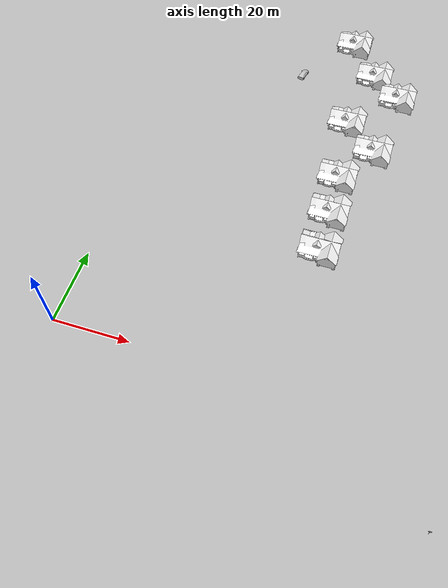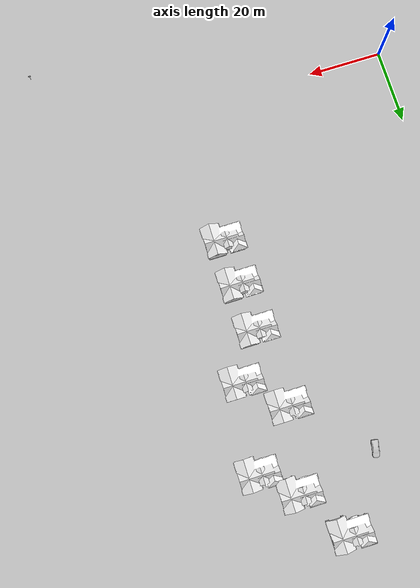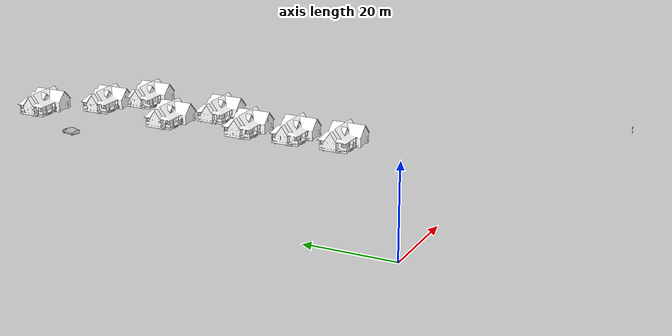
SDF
<sdf version="1.6">
 <world name="default">
  <model name="Speed limit">
   <static>1</static>
   <link name="link">
    <collision name="collision">
     <geometry>
      <mesh><scale>10 10 10</scale><uri>model://speed_limit_sign/meshes/speed_limit_sign.dae</uri></mesh>
     </geometry>
    </collision>
    <visual name="visual">
     <geometry>
      <mesh><scale>10 10 10</scale><uri>model://speed_limit_sign/meshes/speed_limit_sign.dae</uri></mesh>
     </geometry>
    </visual>
   </link>
   <pose>93.9624 -21.3385 0 0 -0 0</pose>
  </model>
  <model name="prius">
   <link name="base_link">
    <inertial>
     <mass>1</mass>
     <inertia><ixx>0.001</ixx><ixy>0</ixy><ixz>0</ixz><iyy>0.001</iyy><iyz>0</iyz><izz>0.001</izz></inertia>
    </inertial>
   </link>
   <link name="chassis">
    <pose>1.45 0 0 0 -0 1.57</pose>
    <inertial>
     <pose>0 -0.003338 0.483111 0 -0 1.5708</pose>
     <mass>1363</mass>
     <inertia>
      <ixx>2589.1</ixx>
      <ixy>3.6612e-05</ixy>
      <ixz>-0.688154</ixz>
      <iyy>609.246</iyy>
      <iyz>2.52773e-06</iyz>
      <izz>2699.92</izz>
     </inertia>
    </inertial>
    <collision name="chassis_collision">
     <pose>0 0.05 0.625 0 -0 0</pose>
     <geometry><box><size>1.7526 2.1 0.95</size></box></geometry>
    </collision>
    <collision name="chassis_fixed_joint_lump__front_bumper_collision_1">
     <pose>0 -2 0.458488 0 -0 0</pose>
     <geometry><box><size>1.33728 0.48 0.566691</size></box></geometry>
    </collision>
    <collision name="chassis_fixed_joint_lump__hood_collision_2">
     <pose>0 -1.90084 0.676305 0.341247 -0 0</pose>
     <geometry><box><size>1.59797 0.493107 0.265468</size></box></geometry>
    </collision>
    <collision name="chassis_fixed_joint_lump__windshield_collision_3">
     <pose>0 -0.875105 1.03227 0.335476 -0 0</pose>
     <geometry><box><size>1.16838 1.65425 0.272347</size></box></geometry>
    </collision>
    <collision name="chassis_fixed_joint_lump__top_front_collision_4">
     <pose>0 0.161236 1.38604 0.13503 -0 0</pose>
     <geometry><box><size>1.27915 0.625988 0.171868</size></box></geometry>
    </collision>
    <collision name="chassis_fixed_joint_lump__top_rear_collision_5">
     <pose>0 0.817696 1.36007 -0.068997 0 0</pose>
     <geometry><box><size>1.28513 0.771189 0.226557</size></box></geometry>
    </collision>
    <collision name="chassis_fixed_joint_lump__rear_window_collision_6">
     <pose>0 1.64053 1.17513 -0.262017 0 0</pose>
     <geometry><box><size>1.26785 1.11634 0.244286</size></box></geometry>
    </collision>
    <collision name="chassis_fixed_joint_lump__trunk_collision_7">
     <pose>0 1.63706 0.88818 0 -0 0</pose>
     <geometry><box><size>1.78806 1.13899 0.482746</size></box></geometry>
    </collision>
    <collision name="chassis_fixed_joint_lump__back_bumper_collision_8">
     <pose>0 2.05445 0.57787 0 -0 0</pose>
     <geometry><box><size>1.78165 0.512093 0.581427</size></box></geometry>
    </collision>
    <visual name="chassis_visual">
     <geometry>
      <mesh>
       <scale>0.01 0.01 0.01</scale>
       <uri>/home/whiteherv/catkin_ws/src/car_demo/prius_description/meshes/hybrid_body.obj</uri>
      </mesh>
     </geometry>
    </visual>
    <sensor name="back_camera_sensor" type="camera">
     <update_rate>30</update_rate>
     <camera name="back_camera">
      <horizontal_fov>1.39626</horizontal_fov>
      <image><width>800</width><height>800</height><format>R8G8B8</format></image>
      <clip><near>0.02</near><far>300</far></clip>
      <noise><type>gaussian</type><mean>0</mean><stddev>0.007</stddev></noise>
     </camera>
     <plugin name="back_camera_controller" filename="libgazebo_ros_camera.so">
      <alwaysOn>false</alwaysOn>
      <updateRate>0.0</updateRate>
      <cameraName>/prius/back_camera</cameraName>
      <imageTopicName>image_raw</imageTopicName>
      <cameraInfoTopicName>/prius/back_camera_info</cameraInfoTopicName>
      <frameName>camera_link</frameName>
      <hackBaseline>0.07</hackBaseline>
      <distortionK1>0.0</distortionK1>
      <distortionK2>0.0</distortionK2>
      <distortionK3>0.0</distortionK3>
      <distortionT1>0.0</distortionT1>
      <distortionT2>0.0</distortionT2>
      <robotNamespace>/</robotNamespace>
     </plugin>
     <pose>0 1.45 1.4 0 0.05 1.5707</pose>
    </sensor>
    <sensor name="front_camera_sensor" type="camera">
     <update_rate>30</update_rate>
     <camera name="front_camera">
      <horizontal_fov>1.39626</horizontal_fov>
      <image><width>800</width><height>800</height><format>R8G8B8</format></image>
      <clip><near>0.02</near><far>300</far></clip>
      <noise><type>gaussian</type><mean>0</mean><stddev>0.007</stddev></noise>
     </camera>
     <plugin name="front_camera_controller" filename="libgazebo_ros_camera.so">
      <alwaysOn>false</alwaysOn>
      <updateRate>0.0</updateRate>
      <cameraName>/prius/front_camera</cameraName>
      <imageTopicName>image_raw</imageTopicName>
      <cameraInfoTopicName>/prius/front_camera_info</cameraInfoTopicName>
      <frameName>camera_link</frameName>
      <hackBaseline>0.07</hackBaseline>
      <distortionK1>0.0</distortionK1>
      <distortionK2>0.0</distortionK2>
      <distortionK3>0.0</distortionK3>
      <distortionT1>0.0</distortionT1>
      <distortionT2>0.0</distortionT2>
      <robotNamespace>/</robotNamespace>
     </plugin>
     <pose>0 -0.4 1.4 0 0.05 -1.5707</pose>
    </sensor>
    <sensor name="left_camera_sensor" type="camera">
     <update_rate>30</update_rate>
     <camera name="left_camera">
      <horizontal_fov>1.39626</horizontal_fov>
      <image><width>800</width><height>800</height><format>R8G8B8</format></image>
      <clip><near>0.02</near><far>300</far></clip>
      <noise><type>gaussian</type><mean>0</mean><stddev>0.007</stddev></noise>
     </camera>
     <plugin name="left_camera_controller" filename="libgazebo_ros_camera.so">
      <alwaysOn>false</alwaysOn>
      <updateRate>0.0</updateRate>
      <cameraName>/prius/left_camera</cameraName>
      <imageTopicName>image_raw</imageTopicName>
      <cameraInfoTopicName>/prius/left_camera_info</cameraInfoTopicName>
      <frameName>camera_link</frameName>
      <hackBaseline>0.07</hackBaseline>
      <distortionK1>0.0</distortionK1>
      <distortionK2>0.0</distortionK2>
      <distortionK3>0.0</distortionK3>
      <distortionT1>0.0</distortionT1>
      <distortionT2>0.0</distortionT2>
      <robotNamespace>/</robotNamespace>
     </plugin>
     <pose>1 -0.7 1 0 0.05 1</pose>
    </sensor>
    <sensor name="right_camera_sensor" type="camera">
     <update_rate>30</update_rate>
     <camera name="right_camera">
      <horizontal_fov>1.39626</horizontal_fov>
      <image><width>800</width><height>800</height><format>R8G8B8</format></image>
      <clip><near>0.02</near><far>300</far></clip>
      <noise><type>gaussian</type><mean>0</mean><stddev>0.007</stddev></noise>
     </camera>
     <plugin name="right_camera_controller" filename="libgazebo_ros_camera.so">
      <alwaysOn>false</alwaysOn>
      <updateRate>0.0</updateRate>
      <cameraName>/prius/right_camera</cameraName>
      <imageTopicName>image_raw</imageTopicName>
      <cameraInfoTopicName>/prius/right_camera_info</cameraInfoTopicName>
      <frameName>camera_link</frameName>
      <hackBaseline>0.07</hackBaseline>
      <distortionK1>0.0</distortionK1>
      <distortionK2>0.0</distortionK2>
      <distortionK3>0.0</distortionK3>
      <distortionT1>0.0</distortionT1>
      <distortionT2>0.0</distortionT2>
      <robotNamespace>/</robotNamespace>
     </plugin>
     <pose>-1 -0.7 1 0 0.05 2.1416</pose>
    </sensor>
    <sensor name="center_velodyne" type="gpu_ray">
     <visualize>0</visualize>
     <update_rate>25</update_rate>
     <ray>
      <scan>
       <horizontal>
        <samples>1875</samples>
        <resolution>1</resolution>
        <min_angle>-3.14159</min_angle>
        <max_angle>3.14159</max_angle>
       </horizontal>
       <vertical>
        <samples>16</samples>
        <resolution>1</resolution>
        <min_angle>-0.261799</min_angle>
        <max_angle>0.261799</max_angle>
       </vertical>
      </scan>
      <range><min>0.3</min><max>131</max><resolution>0.001</resolution></range>
      <noise><type>gaussian</type><mean>0</mean><stddev>0</stddev></noise>
     </ray>
     <plugin name="gazebo_ros_laser_controller" filename="libgazebo_ros_velodyne_gpu_laser.so">
      <topicName>/points_raw</topicName>
      <frameName>/velodyne_center_link</frameName>
      <min_range>0.9</min_range>
      <max_range>130.0</max_range>
      <gaussianNoise>0.008</gaussianNoise>
      <robotNamespace>/</robotNamespace>
     </plugin>
     <pose>0 0.4 1.8 0 0 -1.5707</pose>
    </sensor>
    <sensor name="front_left_velodyne" type="gpu_ray">
     <visualize>0</visualize>
     <update_rate>25</update_rate>
     <ray>
      <scan>
       <horizontal>
        <samples>1875</samples>
        <resolution>1</resolution>
        <min_angle>-3.14159</min_angle>
        <max_angle>3.14159</max_angle>
       </horizontal>
       <vertical>
        <samples>16</samples>
        <resolution>1</resolution>
        <min_angle>-0.261799</min_angle>
        <max_angle>0.261799</max_angle>
       </vertical>
      </scan>
      <range><min>0.3</min><max>131</max><resolution>0.001</resolution></range>
      <noise><type>gaussian</type><mean>0</mean><stddev>0</stddev></noise>
     </ray>
     <plugin name="gazebo_ros_laser_controller" filename="libgazebo_ros_velodyne_gpu_laser.so">
      <topicName>/points_raw2</topicName>
      <frameName>/velodyne_front_left_link</frameName>
      <min_range>0.9</min_range>
      <max_range>130.0</max_range>
      <gaussianNoise>0.008</gaussianNoise>
      <robotNamespace>/</robotNamespace>
     </plugin>
     <pose>1 -2.3 0.5 0 0.05 0</pose>
    </sensor>
    <sensor name="front_right_velodyne" type="gpu_ray">
     <visualize>0</visualize>
     <update_rate>25</update_rate>
     <ray>
      <scan>
       <horizontal>
        <samples>1875</samples>
        <resolution>1</resolution>
        <min_angle>-3.14159</min_angle>
        <max_angle>3.14159</max_angle>
       </horizontal>
       <vertical>
        <samples>16</samples>
        <resolution>1</resolution>
        <min_angle>-0.261799</min_angle>
        <max_angle>0.261799</max_angle>
       </vertical>
      </scan>
      <range><min>0.3</min><max>131</max><resolution>0.001</resolution></range>
      <noise><type>gaussian</type><mean>0</mean><stddev>0</stddev></noise>
     </ray>
     <plugin name="gazebo_ros_laser_controller" filename="libgazebo_ros_velodyne_gpu_laser.so">
      <topicName>/points_raw3</topicName>
      <frameName>/velodyne_front_right_link</frameName>
      <min_range>0.9</min_range>
      <max_range>130.0</max_range>
      <gaussianNoise>0.008</gaussianNoise>
      <robotNamespace>/</robotNamespace>
     </plugin>
     <pose>-1 -2.3 0.5 -0 0.05 3.14</pose>
    </sensor>
   </link>
   <joint name="base_link_connection" type="revolute">
    <child>chassis</child>
    <parent>base_link</parent>
    <axis>
     <limit><lower>0</lower><upper>0</upper></limit>
     <dynamics>
      <damping>0</damping>
      <friction>0</friction>
      <spring_reference>0</spring_reference>
      <spring_stiffness>0</spring_stiffness>
     </dynamics>
     <use_parent_model_frame>1</use_parent_model_frame>
     <xyz>0 0 1</xyz>
    </axis>
    <physics><ode><limit><cfm>0</cfm><erp>0.2</erp></limit></ode></physics>
   </joint>
   <link name="fl_axle">
    <pose>2.86061 0.765877 0.3 0 -0 1.57</pose>
    <inertial>
     <mass>1</mass>
     <inertia><ixx>0.004</ixx><ixy>0</ixy><ixz>0</ixz><iyy>0.004</iyy><iyz>0</iyz><izz>0.004</izz></inertia>
    </inertial>
   </link>
   <joint name="front_left_steer_joint" type="revolute">
    <child>fl_axle</child>
    <parent>chassis</parent>
    <axis>
     <xyz>0 0 1</xyz>
     <limit><lower>-1e+16</lower><upper>1e+16</upper></limit>
     <dynamics><spring_reference>0</spring_reference><spring_stiffness>0</spring_stiffness></dynamics>
     <use_parent_model_frame>1</use_parent_model_frame>
    </axis>
   </joint>
   <link name="front_left_wheel">
    <pose>2.86061 0.765877 0.3 0 -0 1.57</pose>
    <inertial>
     <mass>11</mass>
     <inertia>
      <ixx>0.586312</ixx>
      <ixy>0</ixy>
      <ixz>0</ixz>
      <iyy>0.335529</iyy>
      <iyz>0</iyz>
      <izz>0.335529</izz>
     </inertia>
    </inertial>
    <collision name="front_left_wheel_collision_collision">
     <geometry><sphere><radius>0.31265</radius></sphere></geometry>
     <surface>
      <contact><ode><kp>1e+08</kp><min_depth>0.005</min_depth></ode></contact>
      <friction><ode><mu>0.9</mu><mu2>0.9</mu2></ode></friction>
     </surface>
    </collision>
    <visual name="front_left_wheel_visual">
     <geometry>
      <mesh>
       <scale>0.01 0.01 0.01</scale>
       <uri>/home/whiteherv/catkin_ws/src/car_demo/prius_description/meshes/wheel.obj</uri>
      </mesh>
     </geometry>
     <material><script><uri>__default__</uri><name>__default__</name></script></material>
    </visual>
   </link>
   <joint name="front_left_wheel_joint" type="revolute">
    <child>front_left_wheel</child>
    <parent>fl_axle</parent>
    <axis>
     <xyz>0.000796 1 0</xyz>
     <limit><lower>-1e+16</lower><upper>1e+16</upper></limit>
     <dynamics><spring_reference>0</spring_reference><spring_stiffness>0</spring_stiffness></dynamics>
     <use_parent_model_frame>1</use_parent_model_frame>
    </axis>
   </joint>
   <link name="fr_axle">
    <pose>2.85939 -0.768123 0.3 0 -0 1.57</pose>
    <inertial>
     <mass>1</mass>
     <inertia><ixx>0.004</ixx><ixy>0</ixy><ixz>0</ixz><iyy>0.004</iyy><iyz>0</iyz><izz>0.004</izz></inertia>
    </inertial>
   </link>
   <joint name="front_right_steer_joint" type="revolute">
    <child>fr_axle</child>
    <parent>chassis</parent>
    <axis>
     <xyz>0 0 1</xyz>
     <limit><lower>-1e+16</lower><upper>1e+16</upper></limit>
     <dynamics><spring_reference>0</spring_reference><spring_stiffness>0</spring_stiffness></dynamics>
     <use_parent_model_frame>1</use_parent_model_frame>
    </axis>
   </joint>
   <link name="front_right_wheel">
    <pose>2.85939 -0.768123 0.3 0 -0 1.57</pose>
    <inertial>
     <mass>11</mass>
     <inertia>
      <ixx>0.586312</ixx>
      <ixy>0</ixy>
      <ixz>0</ixz>
      <iyy>0.335529</iyy>
      <iyz>0</iyz>
      <izz>0.335529</izz>
     </inertia>
    </inertial>
    <collision name="front_right_wheel_collision_collision">
     <geometry><sphere><radius>0.31265</radius></sphere></geometry>
     <surface>
      <contact><ode><kp>1e+08</kp><min_depth>0.005</min_depth></ode></contact>
      <friction><ode><mu>0.9</mu><mu2>0.9</mu2></ode></friction>
     </surface>
    </collision>
    <visual name="front_right_wheel_visual">
     <geometry>
      <mesh>
       <scale>0.01 0.01 0.01</scale>
       <uri>/home/whiteherv/catkin_ws/src/car_demo/prius_description/meshes/wheel.obj</uri>
      </mesh>
     </geometry>
     <material><script><uri>__default__</uri><name>__default__</name></script></material>
    </visual>
   </link>
   <joint name="front_right_wheel_joint" type="revolute">
    <child>front_right_wheel</child>
    <parent>fr_axle</parent>
    <axis>
     <xyz>0.000796 1 0</xyz>
     <limit><lower>-1e+16</lower><upper>1e+16</upper></limit>
     <dynamics><spring_reference>0</spring_reference><spring_stiffness>0</spring_stiffness></dynamics>
     <use_parent_model_frame>1</use_parent_model_frame>
    </axis>
   </joint>
   <link name="rear_left_wheel">
    <pose>0.000632 0.794154 0.3 0 -0 1.57</pose>
    <inertial>
     <mass>11</mass>
     <inertia>
      <ixx>0.586312</ixx>
      <ixy>0</ixy>
      <ixz>0</ixz>
      <iyy>0.335529</iyy>
      <iyz>0</iyz>
      <izz>0.335529</izz>
     </inertia>
    </inertial>
    <collision name="rear_left_wheel_collision_collision">
     <geometry><sphere><radius>0.31265</radius></sphere></geometry>
     <surface>
      <contact><ode><kp>1e+08</kp><min_depth>0.005</min_depth></ode></contact>
      <friction><ode><mu>0.9</mu><mu2>0.9</mu2></ode></friction>
     </surface>
    </collision>
    <visual name="rear_left_wheel_visual">
     <geometry>
      <mesh>
       <scale>0.01 0.01 0.01</scale>
       <uri>/home/whiteherv/catkin_ws/src/car_demo/prius_description/meshes/wheel.obj</uri>
      </mesh>
     </geometry>
     <material><script><uri>__default__</uri><name>__default__</name></script></material>
    </visual>
   </link>
   <joint name="rear_left_wheel_joint" type="revolute">
    <child>rear_left_wheel</child>
    <parent>chassis</parent>
    <axis>
     <xyz>0.000796 1 0</xyz>
     <limit><lower>-1e+16</lower><upper>1e+16</upper></limit>
     <dynamics><spring_reference>0</spring_reference><spring_stiffness>0</spring_stiffness></dynamics>
     <use_parent_model_frame>1</use_parent_model_frame>
    </axis>
   </joint>
   <link name="rear_right_wheel">
    <pose>-0.000631 -0.791845 0.3 0 -0 1.57</pose>
    <inertial>
     <mass>11</mass>
     <inertia>
      <ixx>0.586312</ixx>
      <ixy>0</ixy>
      <ixz>0</ixz>
      <iyy>0.335529</iyy>
      <iyz>0</iyz>
      <izz>0.335529</izz>
     </inertia>
    </inertial>
    <collision name="rear_right_wheel_collision_collision">
     <geometry><sphere><radius>0.31265</radius></sphere></geometry>
     <surface>
      <contact><ode><kp>1e+08</kp><min_depth>0.005</min_depth></ode></contact>
      <friction><ode><mu>0.9</mu><mu2>0.9</mu2></ode></friction>
     </surface>
    </collision>
    <visual name="rear_right_wheel_visual">
     <geometry>
      <mesh>
       <scale>0.01 0.01 0.01</scale>
       <uri>/home/whiteherv/catkin_ws/src/car_demo/prius_description/meshes/wheel.obj</uri>
      </mesh>
     </geometry>
     <material><script><uri>__default__</uri><name>__default__</name></script></material>
    </visual>
   </link>
   <joint name="rear_right_wheel_joint" type="revolute">
    <child>rear_right_wheel</child>
    <parent>chassis</parent>
    <axis>
     <xyz>0.000796 1 0</xyz>
     <limit><lower>-1e+16</lower><upper>1e+16</upper></limit>
     <dynamics><spring_reference>0</spring_reference><spring_stiffness>0</spring_stiffness></dynamics>
     <use_parent_model_frame>1</use_parent_model_frame>
    </axis>
   </joint>
   <link name="steering_wheel">
    <pose>2.07815 0.357234 0.988243 -1.3021 0 1.57</pose>
    <inertial>
     <mass>1</mass>
     <inertia><ixx>0.145833</ixx><ixy>0</ixy><ixz>0</ixz><iyy>0.145833</iyy><iyz>0</iyz><izz>0.125</izz></inertia>
    </inertial>
    <visual name="steering_wheel_visual">
     <pose>0 0 0 1.3021 -0 0</pose>
     <geometry>
      <mesh>
       <scale>0.01 0.01 0.01</scale>
       <uri>/home/whiteherv/catkin_ws/src/car_demo/prius_description/meshes/steering_wheel.obj</uri>
      </mesh>
     </geometry>
    </visual>
   </link>
   <joint name="steering_joint" type="revolute">
    <child>steering_wheel</child>
    <parent>chassis</parent>
    <axis>
     <xyz>-0.964118 0.000768 0.265474</xyz>
     <limit><lower>-1e+16</lower><upper>1e+16</upper></limit>
     <dynamics><spring_reference>0</spring_reference><spring_stiffness>0</spring_stiffness></dynamics>
     <use_parent_model_frame>1</use_parent_model_frame>
    </axis>
   </joint>
   <plugin name="pruis_hybrid_drive" filename="libPriusHybridPlugin.so">
    <chassis>chassis</chassis>
    <front_left_wheel>front_left_wheel_joint</front_left_wheel>
    <front_right_wheel>front_right_wheel_joint</front_right_wheel>
    <front_left_wheel_steering>front_left_steer_joint</front_left_wheel_steering>
    <front_right_wheel_steering>front_right_steer_joint</front_right_wheel_steering>
    <back_left_wheel>rear_left_wheel_joint</back_left_wheel>
    <back_right_wheel>rear_right_wheel_joint</back_right_wheel>
    <steering_wheel>steering_joint</steering_wheel>
    <chassis_aero_force_gain>0.63045</chassis_aero_force_gain>
    <front_torque>859.4004393000001</front_torque>
    <back_torque>0</back_torque>
    <front_brake_torque>1031.28052716</front_brake_torque>
    <back_brake_torque>687.5203514400001</back_brake_torque>
    <max_speed>37.998337013956565</max_speed>
    <min_gas_flow>8.981854013171626e-05</min_gas_flow>
    <gas_efficiency>0.371</gas_efficiency>
    <battery_charge_watt_hours>291</battery_charge_watt_hours>
    <battery_discharge_watt_hours>214</battery_discharge_watt_hours>
    <max_steer>0.6458</max_steer>
    <flwheel_steering_p_gain>1e4</flwheel_steering_p_gain>
    <frwheel_steering_p_gain>1e4</frwheel_steering_p_gain>
    <flwheel_steering_i_gain>0</flwheel_steering_i_gain>
    <frwheel_steering_i_gain>0</frwheel_steering_i_gain>
    <flwheel_steering_d_gain>3e2</flwheel_steering_d_gain>
    <frwheel_steering_d_gain>3e2</frwheel_steering_d_gain>
    <robotNamespace>/</robotNamespace>
   </plugin>
   <plugin name="joint_state_publisher" filename="libgazebo_ros_joint_state_publisher.so">
    <jointName>rear_right_wheel_joint, rear_left_wheel_joint, front_right_wheel_joint, front_left_wheel_joint, front_right_steer_joint, front_left_steer_joint, steering_joint</jointName>
    <updateRate>100.0</updateRate>
    <alwaysOn>true</alwaysOn>
    <robotNamespace>/</robotNamespace>
   </plugin>
   <static>0</static>
   <plugin name="p3d" filename="libgazebo_ros_p3d.so">
    <bodyName>base_link</bodyName>
    <topicName>base_pose_ground_truth</topicName>
    <frameName>map</frameName>
    <updateRate>100.0</updateRate>
    <robotNamespace>/</robotNamespace>
   </plugin>
   <pose>35.8972 99.5389 0.006905 0 0.000235 1.36663</pose>
  </model>
  <model name="House 1_0">
   <static>1</static>
   <link name="link">
    <collision name="collision">
     <geometry><mesh><uri>model://house_1/meshes/house_1.dae</uri></mesh></geometry>
    </collision>
    <visual name="visual">
     <geometry><mesh><uri>model://house_1/meshes/house_1.dae</uri></mesh></geometry>
     <material>
      <script>
       <uri>model://house_1/materials/scripts</uri>
       <uri>model://house_1/materials/textures</uri>
       <name>House_1/Diffuse</name>
      </script>
      <shader type="normal_map_object_space"><normal_map>House_1_Normal.png</normal_map></shader>
     </material>
    </visual>
   </link>
   <pose>56.9681 38.0409 0 0 -0 0</pose>
  </model>
  <model name="House 1_1">
   <static>1</static>
   <link name="link">
    <collision name="collision">
     <geometry><mesh><uri>model://house_1/meshes/house_1.dae</uri></mesh></geometry>
    </collision>
    <visual name="visual">
     <geometry><mesh><uri>model://house_1/meshes/house_1.dae</uri></mesh></geometry>
     <material>
      <script>
       <uri>model://house_1/materials/scripts</uri>
       <uri>model://house_1/materials/textures</uri>
       <name>House_1/Diffuse</name>
      </script>
      <shader type="normal_map_object_space"><normal_map>House_1_Normal.png</normal_map></shader>
     </material>
    </visual>
   </link>
   <pose>56.5659 50.4411 0 0 -0 0</pose>
  </model>
  <model name="House 1_1_clone">
   <static>1</static>
   <link name="link">
    <collision name="collision">
     <geometry><mesh><uri>model://house_1/meshes/house_1.dae</uri></mesh></geometry>
    </collision>
    <visual name="visual">
     <geometry><mesh><uri>model://house_1/meshes/house_1.dae</uri></mesh></geometry>
     <material>
      <script>
       <uri>model://house_1/materials/scripts</uri>
       <uri>model://house_1/materials/textures</uri>
       <name>House_1/Diffuse</name>
      </script>
      <shader type="normal_map_object_space"><normal_map>House_1_Normal.png</normal_map></shader>
     </material>
    </visual>
   </link>
   <pose>56 63 0 0 -0 0</pose>
  </model>
  <model name="House 1_1_clone_0">
   <static>1</static>
   <link name="link">
    <collision name="collision">
     <geometry><mesh><uri>model://house_1/meshes/house_1.dae</uri></mesh></geometry>
    </collision>
    <visual name="visual">
     <geometry><mesh><uri>model://house_1/meshes/house_1.dae</uri></mesh></geometry>
     <material>
      <script>
       <uri>model://house_1/materials/scripts</uri>
       <uri>model://house_1/materials/textures</uri>
       <name>House_1/Diffuse</name>
      </script>
      <shader type="normal_map_object_space"><normal_map>House_1_Normal.png</normal_map></shader>
     </material>
    </visual>
   </link>
   <pose>63.4871 75 0 0 -0 0</pose>
  </model>
  <model name="House 1_1_clone_1">
   <static>1</static>
   <link name="link">
    <collision name="collision">
     <geometry><mesh><uri>model://house_1/meshes/house_1.dae</uri></mesh></geometry>
    </collision>
    <visual name="visual">
     <geometry><mesh><uri>model://house_1/meshes/house_1.dae</uri></mesh></geometry>
     <material>
      <script>
       <uri>model://house_1/materials/scripts</uri>
       <uri>model://house_1/materials/textures</uri>
       <name>House_1/Diffuse</name>
      </script>
      <shader type="normal_map_object_space"><normal_map>House_1_Normal.png</normal_map></shader>
     </material>
    </visual>
   </link>
   <pose>54 84 0 0 -0 0</pose>
  </model>
  <model name="House 1_1_clone_2">
   <static>1</static>
   <link name="link">
    <collision name="collision">
     <geometry><mesh><uri>model://house_1/meshes/house_1.dae</uri></mesh></geometry>
    </collision>
    <visual name="visual">
     <geometry><mesh><uri>model://house_1/meshes/house_1.dae</uri></mesh></geometry>
     <material>
      <script>
       <uri>model://house_1/materials/scripts</uri>
       <uri>model://house_1/materials/textures</uri>
       <name>House_1/Diffuse</name>
      </script>
      <shader type="normal_map_object_space"><normal_map>House_1_Normal.png</normal_map></shader>
     </material>
    </visual>
   </link>
   <pose>66.4597 98 0 0 -0 0</pose>
  </model>
  <model name="House 1_1_clone_3">
   <static>1</static>
   <link name="link">
    <collision name="collision">
     <geometry><mesh><uri>model://house_1/meshes/house_1.dae</uri></mesh></geometry>
    </collision>
    <visual name="visual">
     <geometry><mesh><uri>model://house_1/meshes/house_1.dae</uri></mesh></geometry>
     <material>
      <script>
       <uri>model://house_1/materials/scripts</uri>
       <uri>model://house_1/materials/textures</uri>
       <name>House_1/Diffuse</name>
      </script>
      <shader type="normal_map_object_space"><normal_map>House_1_Normal.png</normal_map></shader>
     </material>
    </visual>
   </link>
   <pose>58 105.539 0 0 -0 0</pose>
  </model>
  <model name="House 1_1_clone_8">
   <static>1</static>
   <link name="link">
    <collision name="collision">
     <geometry><mesh><uri>model://house_1/meshes/house_1.dae</uri></mesh></geometry>
    </collision>
    <visual name="visual">
     <geometry><mesh><uri>model://house_1/meshes/house_1.dae</uri></mesh></geometry>
     <material>
      <script>
       <uri>model://house_1/materials/scripts</uri>
       <uri>model://house_1/materials/textures</uri>
       <name>House_1/Diffuse</name>
      </script>
      <shader type="normal_map_object_space"><normal_map>House_1_Normal.png</normal_map></shader>
     </material>
    </visual>
   </link>
   <pose>49 118.428 0 0 -0 0</pose>
  </model>
 </world>
</sdf>
